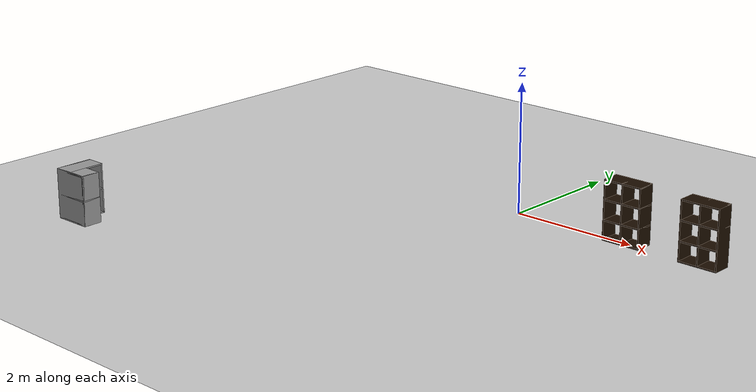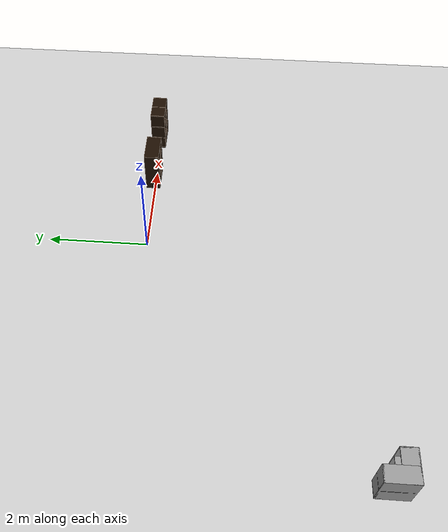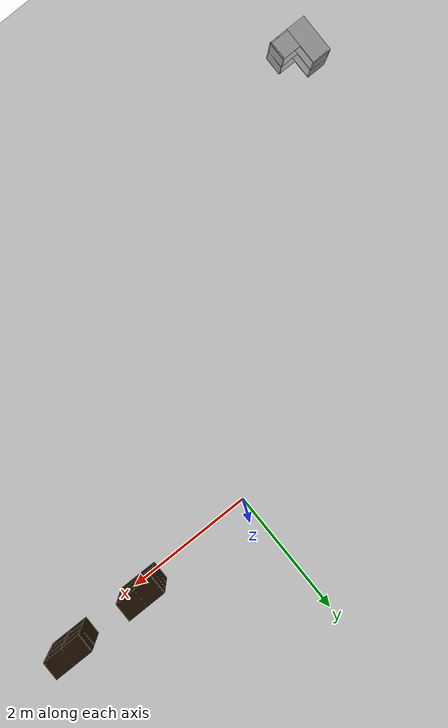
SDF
<sdf version="1.7">
 <world name="default">
  <model name="ground_plane">
   <static>1</static>
   <link name="link">
    <collision name="collision">
     <geometry><plane><normal>0 0 1</normal><size>100 100</size></plane></geometry>
     <surface>
      <contact><collide_bitmask>65535</collide_bitmask></contact>
      <friction><ode><mu>100</mu><mu2>50</mu2></ode></friction>
     </surface>
    </collision>
    <visual name="visual">
     <cast_shadows>0</cast_shadows>
     <geometry><plane><normal>0 0 1</normal><size>100 100</size></plane></geometry>
     <material>
      <script><uri>file://media/materials/scripts/gazebo.material</uri><name>Gazebo/Grey</name></script>
     </material>
    </visual>
   </link>
  </model>
  <model name="Wall_Cabinet_Coin_24x30W">
   <link name="Wall_10">
    <pose>0.286 -0.148 0.384 0 -0 0</pose>
    <inertial>
     <mass>2.1259</mass>
     <inertia><ixx>0.0158</ixx><iyy>0.1202</iyy><izz>0.1046</izz><ixy>0</ixy><ixz>0</ixz><iyz>0</iyz></inertia>
    </inertial>
    <collision name="Wall_10_Collision"><geometry><box><size>0.02 0.296 0.768</size></box></geometry></collision>
    <visual name="Wall_10_Visual">
     <geometry><box><size>0.02 0.296 0.768</size></box></geometry>
     <material>
      <script><uri>file://media/materials/scripts/gazebo.material</uri><name>Gazebo/Grey</name></script>
      <ambient>1 1 1 1</ambient>
     </material>
    </visual>
   </link>
   <joint name="10_16" type="fixed">
    <pose>0 0 -0.374 0 -0 0</pose>
    <parent>Wall_16</parent>
    <child>Wall_10</child>
    <axis><xyz>1 0 0</xyz><limit><lower>-1e+16</lower><upper>1e+16</upper></limit></axis>
   </joint>
   <joint name="10_14" type="fixed">
    <parent>Wall_14</parent>
    <child>Wall_10</child>
    <axis><xyz>1 0 0</xyz><limit><lower>-1e+16</lower><upper>1e+16</upper></limit></axis>
   </joint>
   <joint name="10_12" type="fixed">
    <pose>0 0 0.374 0 -0 0</pose>
    <parent>Wall_12</parent>
    <child>Wall_10</child>
    <axis><xyz>1 0 0</xyz><limit><lower>-1e+16</lower><upper>1e+16</upper></limit></axis>
   </joint>
   <joint name="10_29" type="fixed">
    <pose>0 -0.148 0 0 -0 0</pose>
    <parent>Wall_29</parent>
    <child>Wall_10</child>
    <axis><xyz>1 0 0</xyz><limit><lower>-1e+16</lower><upper>1e+16</upper></limit></axis>
   </joint>
   <link name="Wall_12">
    <pose>0.148 -0.148 0.758 0 -0 0</pose>
    <inertial>
     <mass>0.8802</mass>
     <inertia><ixx>0.0065</ixx><iyy>0.0139</iyy><izz>0.0074</izz><ixy>0</ixy><ixz>0</ixz><iyz>0</iyz></inertia>
    </inertial>
    <collision name="Wall_12_Collision"><geometry><box><size>0.296 0.296 0.02</size></box></geometry></collision>
    <visual name="Wall_12_Visual">
     <geometry><box><size>0.296 0.296 0.02</size></box></geometry>
     <material>
      <script><uri>file://media/materials/scripts/gazebo.material</uri><name>Gazebo/Grey</name></script>
      <ambient>1 1 1 1</ambient>
     </material>
    </visual>
   </link>
   <joint name="12_29" type="fixed">
    <pose>0 -0.148 0 0 -0 0</pose>
    <parent>Wall_29</parent>
    <child>Wall_12</child>
    <axis><xyz>0 0 1</xyz><limit><lower>-1e+16</lower><upper>1e+16</upper></limit></axis>
   </joint>
   <link name="Wall_14">
    <pose>0.148 -0.148 0.384 0 -0 0</pose>
    <inertial>
     <mass>0.8802</mass>
     <inertia><ixx>0.0065</ixx><iyy>0.0139</iyy><izz>0.0074</izz><ixy>0</ixy><ixz>0</ixz><iyz>0</iyz></inertia>
    </inertial>
    <collision name="Wall_14_Collision"><geometry><box><size>0.296 0.296 0.02</size></box></geometry></collision>
    <visual name="Wall_14_Visual">
     <geometry><box><size>0.296 0.296 0.02</size></box></geometry>
     <material>
      <script><uri>file://media/materials/scripts/gazebo.material</uri><name>Gazebo/Grey</name></script>
      <ambient>1 1 1 1</ambient>
     </material>
    </visual>
   </link>
   <joint name="14_29" type="fixed">
    <pose>0 -0.148 0 0 -0 0</pose>
    <parent>Wall_29</parent>
    <child>Wall_14</child>
    <axis><xyz>0 1 0</xyz><limit><lower>-1e+16</lower><upper>1e+16</upper></limit></axis>
   </joint>
   <link name="Wall_16">
    <pose>0.148 -0.148 0.01 0 -0 0</pose>
    <inertial>
     <mass>0.8802</mass>
     <inertia><ixx>0.0065</ixx><iyy>0.0139</iyy><izz>0.0074</izz><ixy>0</ixy><ixz>0</ixz><iyz>0</iyz></inertia>
    </inertial>
    <collision name="Wall_16_Collision"><geometry><box><size>0.296 0.296 0.02</size></box></geometry></collision>
    <visual name="Wall_16_Visual">
     <geometry><box><size>0.296 0.296 0.02</size></box></geometry>
     <material>
      <script><uri>file://media/materials/scripts/gazebo.material</uri><name>Gazebo/Grey</name></script>
      <ambient>1 1 1 1</ambient>
     </material>
    </visual>
   </link>
   <joint name="16_29" type="fixed">
    <pose>0 -0.148 0 0 -0 0</pose>
    <parent>Wall_29</parent>
    <child>Wall_16</child>
    <axis><xyz>0 1 0</xyz><limit><lower>-1e+16</lower><upper>1e+16</upper></limit></axis>
   </joint>
   <link name="Wall_18">
    <pose>-0.148 0 0.01 0 -0 0</pose>
    <inertial>
     <mass>1.6525</mass>
     <inertia><ixx>0.0491</ixx><iyy>0.0613</iyy><izz>0.0123</izz><ixy>0</ixy><ixz>0</ixz><iyz>0</iyz></inertia>
    </inertial>
    <collision name="Wall_18_Collision"><geometry><box><size>0.296 0.592 0.02</size></box></geometry></collision>
    <visual name="Wall_18_Visual">
     <geometry><box><size>0.296 0.592 0.02</size></box></geometry>
     <material>
      <script><uri>file://media/materials/scripts/gazebo.material</uri><name>Gazebo/Grey</name></script>
      <ambient>1 1 1 1</ambient>
     </material>
    </visual>
   </link>
   <joint name="18_16" type="fixed">
    <pose>0.148 -0.148 0 0 -0 0</pose>
    <parent>Wall_16</parent>
    <child>Wall_18</child>
    <axis><xyz>1 0 0</xyz><limit><lower>-1e+16</lower><upper>1e+16</upper></limit></axis>
   </joint>
   <joint name="18_29" type="fixed">
    <pose>0 -0.296 0 0 -0 0</pose>
    <parent>Wall_29</parent>
    <child>Wall_18</child>
    <axis><xyz>0 1 0</xyz><limit><lower>-1e+16</lower><upper>1e+16</upper></limit></axis>
   </joint>
   <joint name="18_27" type="fixed">
    <pose>-0.148 0 0 0 -0 0</pose>
    <parent>Wall_27</parent>
    <child>Wall_18</child>
    <axis><xyz>1 0 0</xyz><limit><lower>-1e+16</lower><upper>1e+16</upper></limit></axis>
   </joint>
   <joint name="18_30" type="fixed">
    <pose>0 0.296 0 0 -0 0</pose>
    <parent>Wall_30</parent>
    <child>Wall_18</child>
    <axis><xyz>0 1 0</xyz><limit><lower>-1e+16</lower><upper>1e+16</upper></limit></axis>
   </joint>
   <link name="Wall_20">
    <pose>-0.148 0 0.384 0 -0 0</pose>
    <inertial>
     <mass>1.6525</mass>
     <inertia><ixx>0.0491</ixx><iyy>0.0613</iyy><izz>0.0123</izz><ixy>0</ixy><ixz>0</ixz><iyz>0</iyz></inertia>
    </inertial>
    <collision name="Wall_20_Collision"><geometry><box><size>0.296 0.592 0.02</size></box></geometry></collision>
    <visual name="Wall_20_Visual">
     <geometry><box><size>0.296 0.592 0.02</size></box></geometry>
     <material>
      <script><uri>file://media/materials/scripts/gazebo.material</uri><name>Gazebo/Grey</name></script>
      <ambient>1 1 1 1</ambient>
     </material>
    </visual>
   </link>
   <joint name="20_14" type="fixed">
    <pose>0.148 -0.148 0 0 -0 0</pose>
    <parent>Wall_14</parent>
    <child>Wall_20</child>
    <axis><xyz>1 0 0</xyz><limit><lower>-1e+16</lower><upper>1e+16</upper></limit></axis>
   </joint>
   <joint name="20_29" type="fixed">
    <pose>0 -0.296 0 0 -0 0</pose>
    <parent>Wall_29</parent>
    <child>Wall_20</child>
    <axis><xyz>0 1 0</xyz><limit><lower>-1e+16</lower><upper>1e+16</upper></limit></axis>
   </joint>
   <joint name="20_27" type="fixed">
    <pose>-0.148 0 0 0 -0 0</pose>
    <parent>Wall_27</parent>
    <child>Wall_20</child>
    <axis><xyz>1 0 0</xyz><limit><lower>-1e+16</lower><upper>1e+16</upper></limit></axis>
   </joint>
   <joint name="20_30" type="fixed">
    <pose>0 0.296 0 0 -0 0</pose>
    <parent>Wall_30</parent>
    <child>Wall_20</child>
    <axis><xyz>0 1 0</xyz><limit><lower>-1e+16</lower><upper>1e+16</upper></limit></axis>
   </joint>
   <link name="Wall_22">
    <pose>-0.148 0 0.758 0 -0 0</pose>
    <inertial>
     <mass>1.6525</mass>
     <inertia><ixx>0.0491</ixx><iyy>0.0613</iyy><izz>0.0123</izz><ixy>0</ixy><ixz>0</ixz><iyz>0</iyz></inertia>
    </inertial>
    <collision name="Wall_22_Collision"><geometry><box><size>0.296 0.592 0.02</size></box></geometry></collision>
    <visual name="Wall_22_Visual">
     <geometry><box><size>0.296 0.592 0.02</size></box></geometry>
     <material>
      <script><uri>file://media/materials/scripts/gazebo.material</uri><name>Gazebo/Grey</name></script>
      <ambient>1 1 1 1</ambient>
     </material>
    </visual>
   </link>
   <joint name="22_12" type="fixed">
    <pose>0.148 -0.148 0 0 -0 0</pose>
    <parent>Wall_12</parent>
    <child>Wall_22</child>
    <axis><xyz>1 0 0</xyz><limit><lower>-1e+16</lower><upper>1e+16</upper></limit></axis>
   </joint>
   <joint name="22_29" type="fixed">
    <pose>0 -0.296 0 0 -0 0</pose>
    <parent>Wall_29</parent>
    <child>Wall_22</child>
    <axis><xyz>0 1 0</xyz><limit><lower>-1e+16</lower><upper>1e+16</upper></limit></axis>
   </joint>
   <joint name="22_27" type="fixed">
    <pose>-0.148 0 0 0 -0 0</pose>
    <parent>Wall_27</parent>
    <child>Wall_22</child>
    <axis><xyz>1 0 0</xyz><limit><lower>-1e+16</lower><upper>1e+16</upper></limit></axis>
   </joint>
   <joint name="22_30" type="fixed">
    <pose>0 0.296 0 0 -0 0</pose>
    <parent>Wall_30</parent>
    <child>Wall_22</child>
    <axis><xyz>0 1 0</xyz><limit><lower>-1e+16</lower><upper>1e+16</upper></limit></axis>
   </joint>
   <link name="Wall_27">
    <pose>-0.286 0 0.384 0 -0 0</pose>
    <inertial>
     <mass>4.2589</mass>
     <inertia><ixx>0.1266</ixx><iyy>0.3358</iyy><izz>0.2095</izz><ixy>0</ixy><ixz>0</ixz><iyz>0</iyz></inertia>
    </inertial>
    <collision name="Wall_27_Collision"><geometry><box><size>0.02 0.592 0.768</size></box></geometry></collision>
    <visual name="Wall_27_Visual">
     <geometry><box><size>0.02 0.592 0.768</size></box></geometry>
     <material>
      <script><uri>file://media/materials/scripts/gazebo.material</uri><name>Gazebo/Grey</name></script>
      <ambient>1 1 1 1</ambient>
     </material>
    </visual>
   </link>
   <joint name="27_30" type="fixed">
    <pose>0 0.296 0 0 -0 0</pose>
    <parent>Wall_30</parent>
    <child>Wall_27</child>
    <axis><xyz>0 1 0</xyz><limit><lower>-1e+16</lower><upper>1e+16</upper></limit></axis>
   </joint>
   <link name="Wall_29">
    <pose>0 -0.286 0.384 0 -0 0</pose>
    <inertial>
     <mass>4.3176</mass>
     <inertia><ixx>0.134</ixx><iyy>0.2091</iyy><izz>0.3428</izz><ixy>0</ixy><ixz>0</ixz><iyz>0</iyz></inertia>
    </inertial>
    <collision name="Wall_29_Collision"><geometry><box><size>0.592 0.02 0.768</size></box></geometry></collision>
    <visual name="Wall_29_Visual">
     <geometry><box><size>0.592 0.02 0.768</size></box></geometry>
     <material>
      <script><uri>file://media/materials/scripts/gazebo.material</uri><name>Gazebo/Grey</name></script>
      <ambient>1 1 1 1</ambient>
     </material>
    </visual>
   </link>
   <link name="Wall_30">
    <pose>-0.148 0.286 0.384 0 -0 0</pose>
    <inertial>
     <mass>2.1093</mass>
     <inertia><ixx>0.1021</ixx><iyy>0.0157</iyy><izz>0.1177</izz><ixy>0</ixy><ixz>0</ixz><iyz>0</iyz></inertia>
    </inertial>
    <collision name="Wall_30_Collision"><geometry><box><size>0.296 0.02 0.768</size></box></geometry></collision>
    <visual name="Wall_30_Visual">
     <geometry><box><size>0.296 0.02 0.768</size></box></geometry>
     <material>
      <script><uri>file://media/materials/scripts/gazebo.material</uri><name>Gazebo/Grey</name></script>
      <ambient>1 1 1 1</ambient>
     </material>
    </visual>
   </link>
   <static>1</static>
   <pose>-4.53674 -4.45634 0 0 -0 0</pose>
  </model>
  <model name="6_Cube_StorageE_1">
   <link name="Wall_0">
    <pose>0 0 0.01 0 -0 0</pose>
    <inertial>
     <mass>1.6201</mass>
     <inertia><ixx>0.0119</ixx><iyy>0.0631</iyy><izz>0.0513</izz><ixy>0</ixy><ixz>0</ixz><iyz>0</iyz></inertia>
    </inertial>
    <collision name="Wall_0_Collision"><geometry><box><size>0.616 0.296 0.02</size></box></geometry></collision>
    <visual name="Wall_0_Visual">
     <geometry><box><size>0.616 0.296 0.02</size></box></geometry>
     <material>
      <script><uri>file://media/materials/scripts/gazebo.material</uri><name>Gazebo/Grey</name></script>
      <ambient>0.105882 0.0509804 0 1</ambient>
     </material>
    </visual>
   </link>
   <joint name="0_2" type="fixed">
    <pose>-0.308 0 0 0 -0 0</pose>
    <parent>Wall_2</parent>
    <child>Wall_0</child>
    <axis><xyz>1 0 0</xyz><limit><lower>-1e+16</lower><upper>1e+16</upper></limit></axis>
   </joint>
   <joint name="0_12" type="fixed">
    <parent>Wall_12</parent>
    <child>Wall_0</child>
    <axis><xyz>0 0 1</xyz><limit><lower>-1e+16</lower><upper>1e+16</upper></limit></axis>
   </joint>
   <joint name="0_4" type="fixed">
    <pose>0.308 0 0 0 -0 0</pose>
    <parent>Wall_4</parent>
    <child>Wall_0</child>
    <axis><xyz>1 0 0</xyz><limit><lower>-1e+16</lower><upper>1e+16</upper></limit></axis>
   </joint>
   <link name="Wall_10">
    <pose>0 0 0.61 0 -0 0</pose>
    <inertial>
     <mass>1.6201</mass>
     <inertia><ixx>0.0119</ixx><iyy>0.0631</iyy><izz>0.0513</izz><ixy>0</ixy><ixz>0</ixz><iyz>0</iyz></inertia>
    </inertial>
    <collision name="Wall_10_Collision"><geometry><box><size>0.616 0.296 0.02</size></box></geometry></collision>
    <visual name="Wall_10_Visual">
     <geometry><box><size>0.616 0.296 0.02</size></box></geometry>
     <material>
      <script><uri>file://media/materials/scripts/gazebo.material</uri><name>Gazebo/Grey</name></script>
      <ambient>0.105882 0.0509804 0 1</ambient>
     </material>
    </visual>
   </link>
   <joint name="10_2" type="fixed">
    <pose>-0.308 0 0 0 -0 0</pose>
    <parent>Wall_2</parent>
    <child>Wall_10</child>
    <axis><xyz>1 0 0</xyz><limit><lower>-1e+16</lower><upper>1e+16</upper></limit></axis>
   </joint>
   <joint name="10_12" type="fixed">
    <parent>Wall_12</parent>
    <child>Wall_10</child>
    <axis><xyz>0 0 1</xyz><limit><lower>-1e+16</lower><upper>1e+16</upper></limit></axis>
   </joint>
   <joint name="10_4" type="fixed">
    <pose>0.308 0 0 0 -0 0</pose>
    <parent>Wall_4</parent>
    <child>Wall_10</child>
    <axis><xyz>1 0 0</xyz><limit><lower>-1e+16</lower><upper>1e+16</upper></limit></axis>
   </joint>
   <link name="Wall_12">
    <pose>0 0 0.4575 0 -0 0</pose>
    <inertial>
     <mass>2.4065</mass>
     <inertia><ixx>0.0177</ixx><iyy>0.1855</iyy><izz>0.168</izz><ixy>0</ixy><ixz>0</ixz><iyz>0</iyz></inertia>
    </inertial>
    <collision name="Wall_12_Collision"><geometry><box><size>0.02 0.296 0.915</size></box></geometry></collision>
    <visual name="Wall_12_Visual">
     <geometry><box><size>0.02 0.296 0.915</size></box></geometry>
     <material>
      <script><uri>file://media/materials/scripts/gazebo.material</uri><name>Gazebo/Grey</name></script>
      <ambient>0.105882 0.0509804 0 1</ambient>
     </material>
    </visual>
   </link>
   <link name="Wall_2">
    <pose>-0.298 0 0.4575 0 -0 0</pose>
    <inertial>
     <mass>2.4065</mass>
     <inertia><ixx>0.0177</ixx><iyy>0.1855</iyy><izz>0.168</izz><ixy>0</ixy><ixz>0</ixz><iyz>0</iyz></inertia>
    </inertial>
    <collision name="Wall_2_Collision"><geometry><box><size>0.02 0.296 0.915</size></box></geometry></collision>
    <visual name="Wall_2_Visual">
     <geometry><box><size>0.02 0.296 0.915</size></box></geometry>
     <material>
      <script><uri>file://media/materials/scripts/gazebo.material</uri><name>Gazebo/Grey</name></script>
      <ambient>0.105882 0.0509804 0 1</ambient>
     </material>
    </visual>
   </link>
   <link name="Wall_4">
    <pose>0.298 0 0.4575 0 -0 0</pose>
    <inertial>
     <mass>2.4065</mass>
     <inertia><ixx>0.0177</ixx><iyy>0.1855</iyy><izz>0.168</izz><ixy>0</ixy><ixz>0</ixz><iyz>0</iyz></inertia>
    </inertial>
    <collision name="Wall_4_Collision"><geometry><box><size>0.02 0.296 0.915</size></box></geometry></collision>
    <visual name="Wall_4_Visual">
     <geometry><box><size>0.02 0.296 0.915</size></box></geometry>
     <material>
      <script><uri>file://media/materials/scripts/gazebo.material</uri><name>Gazebo/Grey</name></script>
      <ambient>0.105882 0.0509804 0 1</ambient>
     </material>
    </visual>
   </link>
   <link name="Wall_6">
    <pose>0 0 0.905 0 -0 0</pose>
    <inertial>
     <mass>1.6201</mass>
     <inertia><ixx>0.0119</ixx><iyy>0.0631</iyy><izz>0.0513</izz><ixy>0</ixy><ixz>0</ixz><iyz>0</iyz></inertia>
    </inertial>
    <collision name="Wall_6_Collision"><geometry><box><size>0.616 0.296 0.02</size></box></geometry></collision>
    <visual name="Wall_6_Visual">
     <geometry><box><size>0.616 0.296 0.02</size></box></geometry>
     <material>
      <script><uri>file://media/materials/scripts/gazebo.material</uri><name>Gazebo/Grey</name></script>
      <ambient>0.105882 0.0509804 0 1</ambient>
     </material>
    </visual>
   </link>
   <joint name="6_2" type="fixed">
    <pose>-0.308 0 0 0 -0 0</pose>
    <parent>Wall_2</parent>
    <child>Wall_6</child>
    <axis><xyz>2 0 0</xyz><limit><lower>-1e+16</lower><upper>1e+16</upper></limit></axis>
   </joint>
   <joint name="6_12" type="fixed">
    <parent>Wall_12</parent>
    <child>Wall_6</child>
    <axis><xyz>0 0 1</xyz><limit><lower>-1e+16</lower><upper>1e+16</upper></limit></axis>
   </joint>
   <joint name="6_4" type="fixed">
    <pose>0.308 0 0 0 -0 0</pose>
    <parent>Wall_4</parent>
    <child>Wall_6</child>
    <axis><xyz>1 0 0</xyz><limit><lower>-1e+16</lower><upper>1e+16</upper></limit></axis>
   </joint>
   <link name="Wall_8">
    <pose>0 0 0.305 0 -0 0</pose>
    <inertial>
     <mass>1.6201</mass>
     <inertia><ixx>0.0119</ixx><iyy>0.0631</iyy><izz>0.0513</izz><ixy>0</ixy><ixz>0</ixz><iyz>0</iyz></inertia>
    </inertial>
    <collision name="Wall_8_Collision"><geometry><box><size>0.616 0.296 0.02</size></box></geometry></collision>
    <visual name="Wall_8_Visual">
     <geometry><box><size>0.616 0.296 0.02</size></box></geometry>
     <material>
      <script><uri>file://media/materials/scripts/gazebo.material</uri><name>Gazebo/Grey</name></script>
      <ambient>0.105882 0.0509804 0 1</ambient>
     </material>
    </visual>
   </link>
   <joint name="8_2" type="fixed">
    <pose>-0.308 0 0 0 -0 0</pose>
    <parent>Wall_2</parent>
    <child>Wall_8</child>
    <axis><xyz>1 0 0</xyz><limit><lower>-1e+16</lower><upper>1e+16</upper></limit></axis>
   </joint>
   <joint name="8_12" type="fixed">
    <parent>Wall_12</parent>
    <child>Wall_8</child>
    <axis><xyz>0 0 1</xyz><limit><lower>-1e+16</lower><upper>1e+16</upper></limit></axis>
   </joint>
   <joint name="8_4" type="fixed">
    <pose>0.308 0 0 0 -0 0</pose>
    <parent>Wall_4</parent>
    <child>Wall_8</child>
    <axis><xyz>1 0 0</xyz><limit><lower>-1e+16</lower><upper>1e+16</upper></limit></axis>
   </joint>
   <static>1</static>
   <pose>3.14476 0.055579 0 0 -0 0</pose>
  </model>
  <model name="6_Cube_StorageE_3">
   <link name="Wall_0">
    <pose>0 0 0.01 0 -0 0</pose>
    <inertial>
     <mass>1.6201</mass>
     <inertia><ixx>0.0119</ixx><iyy>0.0631</iyy><izz>0.0513</izz><ixy>0</ixy><ixz>0</ixz><iyz>0</iyz></inertia>
    </inertial>
    <collision name="Wall_0_Collision"><geometry><box><size>0.616 0.296 0.02</size></box></geometry></collision>
    <visual name="Wall_0_Visual">
     <geometry><box><size>0.616 0.296 0.02</size></box></geometry>
     <material>
      <script><uri>file://media/materials/scripts/gazebo.material</uri><name>Gazebo/Grey</name></script>
      <ambient>0.105882 0.0509804 0 1</ambient>
     </material>
    </visual>
   </link>
   <joint name="0_2" type="fixed">
    <pose>-0.308 0 0 0 -0 0</pose>
    <parent>Wall_2</parent>
    <child>Wall_0</child>
    <axis><xyz>1 0 0</xyz><limit><lower>-1e+16</lower><upper>1e+16</upper></limit></axis>
   </joint>
   <joint name="0_12" type="fixed">
    <parent>Wall_12</parent>
    <child>Wall_0</child>
    <axis><xyz>0 0 1</xyz><limit><lower>-1e+16</lower><upper>1e+16</upper></limit></axis>
   </joint>
   <joint name="0_4" type="fixed">
    <pose>0.308 0 0 0 -0 0</pose>
    <parent>Wall_4</parent>
    <child>Wall_0</child>
    <axis><xyz>1 0 0</xyz><limit><lower>-1e+16</lower><upper>1e+16</upper></limit></axis>
   </joint>
   <link name="Wall_10">
    <pose>0 0 0.61 0 -0 0</pose>
    <inertial>
     <mass>1.6201</mass>
     <inertia><ixx>0.0119</ixx><iyy>0.0631</iyy><izz>0.0513</izz><ixy>0</ixy><ixz>0</ixz><iyz>0</iyz></inertia>
    </inertial>
    <collision name="Wall_10_Collision"><geometry><box><size>0.616 0.296 0.02</size></box></geometry></collision>
    <visual name="Wall_10_Visual">
     <geometry><box><size>0.616 0.296 0.02</size></box></geometry>
     <material>
      <script><uri>file://media/materials/scripts/gazebo.material</uri><name>Gazebo/Grey</name></script>
      <ambient>0.105882 0.0509804 0 1</ambient>
     </material>
    </visual>
   </link>
   <joint name="10_2" type="fixed">
    <pose>-0.308 0 0 0 -0 0</pose>
    <parent>Wall_2</parent>
    <child>Wall_10</child>
    <axis><xyz>1 0 0</xyz><limit><lower>-1e+16</lower><upper>1e+16</upper></limit></axis>
   </joint>
   <joint name="10_12" type="fixed">
    <parent>Wall_12</parent>
    <child>Wall_10</child>
    <axis><xyz>0 0 1</xyz><limit><lower>-1e+16</lower><upper>1e+16</upper></limit></axis>
   </joint>
   <joint name="10_4" type="fixed">
    <pose>0.308 0 0 0 -0 0</pose>
    <parent>Wall_4</parent>
    <child>Wall_10</child>
    <axis><xyz>1 0 0</xyz><limit><lower>-1e+16</lower><upper>1e+16</upper></limit></axis>
   </joint>
   <link name="Wall_12">
    <pose>0 0 0.4575 0 -0 0</pose>
    <inertial>
     <mass>2.4065</mass>
     <inertia><ixx>0.0177</ixx><iyy>0.1855</iyy><izz>0.168</izz><ixy>0</ixy><ixz>0</ixz><iyz>0</iyz></inertia>
    </inertial>
    <collision name="Wall_12_Collision"><geometry><box><size>0.02 0.296 0.915</size></box></geometry></collision>
    <visual name="Wall_12_Visual">
     <geometry><box><size>0.02 0.296 0.915</size></box></geometry>
     <material>
      <script><uri>file://media/materials/scripts/gazebo.material</uri><name>Gazebo/Grey</name></script>
      <ambient>0.105882 0.0509804 0 1</ambient>
     </material>
    </visual>
   </link>
   <link name="Wall_2">
    <pose>-0.298 0 0.4575 0 -0 0</pose>
    <inertial>
     <mass>2.4065</mass>
     <inertia><ixx>0.0177</ixx><iyy>0.1855</iyy><izz>0.168</izz><ixy>0</ixy><ixz>0</ixz><iyz>0</iyz></inertia>
    </inertial>
    <collision name="Wall_2_Collision"><geometry><box><size>0.02 0.296 0.915</size></box></geometry></collision>
    <visual name="Wall_2_Visual">
     <geometry><box><size>0.02 0.296 0.915</size></box></geometry>
     <material>
      <script><uri>file://media/materials/scripts/gazebo.material</uri><name>Gazebo/Grey</name></script>
      <ambient>0.105882 0.0509804 0 1</ambient>
     </material>
    </visual>
   </link>
   <link name="Wall_4">
    <pose>0.298 0 0.4575 0 -0 0</pose>
    <inertial>
     <mass>2.4065</mass>
     <inertia><ixx>0.0177</ixx><iyy>0.1855</iyy><izz>0.168</izz><ixy>0</ixy><ixz>0</ixz><iyz>0</iyz></inertia>
    </inertial>
    <collision name="Wall_4_Collision"><geometry><box><size>0.02 0.296 0.915</size></box></geometry></collision>
    <visual name="Wall_4_Visual">
     <geometry><box><size>0.02 0.296 0.915</size></box></geometry>
     <material>
      <script><uri>file://media/materials/scripts/gazebo.material</uri><name>Gazebo/Grey</name></script>
      <ambient>0.105882 0.0509804 0 1</ambient>
     </material>
    </visual>
   </link>
   <link name="Wall_6">
    <pose>0 0 0.905 0 -0 0</pose>
    <inertial>
     <mass>1.6201</mass>
     <inertia><ixx>0.0119</ixx><iyy>0.0631</iyy><izz>0.0513</izz><ixy>0</ixy><ixz>0</ixz><iyz>0</iyz></inertia>
    </inertial>
    <collision name="Wall_6_Collision"><geometry><box><size>0.616 0.296 0.02</size></box></geometry></collision>
    <visual name="Wall_6_Visual">
     <geometry><box><size>0.616 0.296 0.02</size></box></geometry>
     <material>
      <script><uri>file://media/materials/scripts/gazebo.material</uri><name>Gazebo/Grey</name></script>
      <ambient>0.105882 0.0509804 0 1</ambient>
     </material>
    </visual>
   </link>
   <joint name="6_2" type="fixed">
    <pose>-0.308 0 0 0 -0 0</pose>
    <parent>Wall_2</parent>
    <child>Wall_6</child>
    <axis><xyz>2 0 0</xyz><limit><lower>-1e+16</lower><upper>1e+16</upper></limit></axis>
   </joint>
   <joint name="6_12" type="fixed">
    <parent>Wall_12</parent>
    <child>Wall_6</child>
    <axis><xyz>0 0 1</xyz><limit><lower>-1e+16</lower><upper>1e+16</upper></limit></axis>
   </joint>
   <joint name="6_4" type="fixed">
    <pose>0.308 0 0 0 -0 0</pose>
    <parent>Wall_4</parent>
    <child>Wall_6</child>
    <axis><xyz>1 0 0</xyz><limit><lower>-1e+16</lower><upper>1e+16</upper></limit></axis>
   </joint>
   <link name="Wall_8">
    <pose>0 0 0.305 0 -0 0</pose>
    <inertial>
     <mass>1.6201</mass>
     <inertia><ixx>0.0119</ixx><iyy>0.0631</iyy><izz>0.0513</izz><ixy>0</ixy><ixz>0</ixz><iyz>0</iyz></inertia>
    </inertial>
    <collision name="Wall_8_Collision"><geometry><box><size>0.616 0.296 0.02</size></box></geometry></collision>
    <visual name="Wall_8_Visual">
     <geometry><box><size>0.616 0.296 0.02</size></box></geometry>
     <material>
      <script><uri>file://media/materials/scripts/gazebo.material</uri><name>Gazebo/Grey</name></script>
      <ambient>0.105882 0.0509804 0 1</ambient>
     </material>
    </visual>
   </link>
   <joint name="8_2" type="fixed">
    <pose>-0.308 0 0 0 -0 0</pose>
    <parent>Wall_2</parent>
    <child>Wall_8</child>
    <axis><xyz>1 0 0</xyz><limit><lower>-1e+16</lower><upper>1e+16</upper></limit></axis>
   </joint>
   <joint name="8_12" type="fixed">
    <parent>Wall_12</parent>
    <child>Wall_8</child>
    <axis><xyz>0 0 1</xyz><limit><lower>-1e+16</lower><upper>1e+16</upper></limit></axis>
   </joint>
   <joint name="8_4" type="fixed">
    <pose>0.308 0 0 0 -0 0</pose>
    <parent>Wall_4</parent>
    <child>Wall_8</child>
    <axis><xyz>1 0 0</xyz><limit><lower>-1e+16</lower><upper>1e+16</upper></limit></axis>
   </joint>
   <static>1</static>
   <pose>1.87865 0.052075 0 0 -0 0</pose>
  </model>
 </world>
</sdf>
